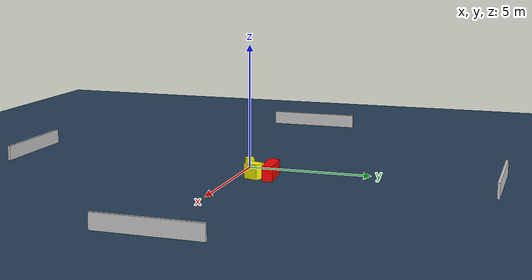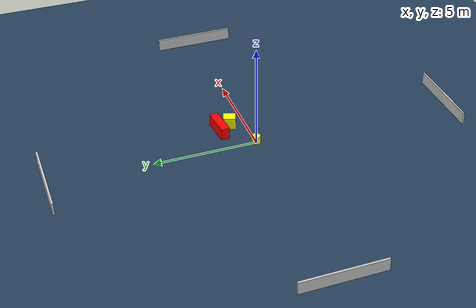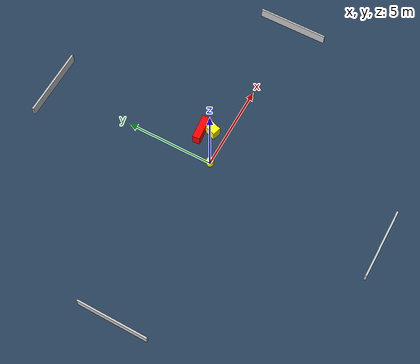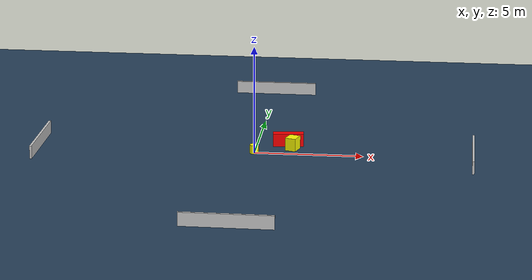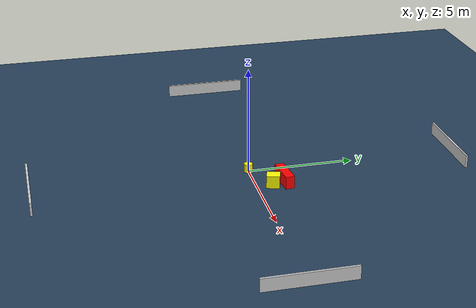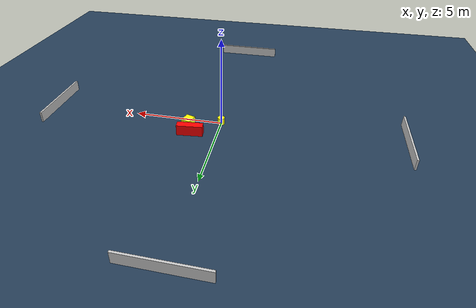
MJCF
<?xml version="1.0" ?>
<mujoco model="generated_environment">
  <option timestep="0.01" integrator="RK4" cone="elliptic"/>
  <default>
    <geom density="1"/>
  </default>
  <asset>
    <texture builtin="gradient" height="3072" name="skybox" rgb1="0.3 0.5 0.7" rgb2="0 0 0" type="skybox" width="512"/>
    <texture builtin="checker" height="300" name="groundplane" rgb1="0.2 0.3 0.4" rgb2="0.1 0.2 0.3" type="2d" width="300"/>
    <material name="groundplane" reflectance="0.2" texrepeat="5 5" texture="groundplane"/>
  </asset>
  <worldbody>
    <light dir="0 0 -1" directional="true" pos="0 0 1.5"/>
    <geom condim="3" friction="0.5 0.005 0.001" material="groundplane" name="floor" pos="0 0 0" size="0 0 0.05" type="plane"/>
    <body name="walls">
      <geom name="wall_1" condim="4" pos="-10.0 0.0 0.3" rgba="0.800000011920929 0.800000011920929 0.800000011920929 1.0" size="0.05 2.0 0.3" type="box"/>
      <geom name="wall_2" condim="4" pos="10.0 0.0 0.3" rgba="0.800000011920929 0.800000011920929 0.800000011920929 1.0" size="0.05 2.0 0.3" type="box"/>
      <geom name="wall_3" condim="4" pos="0.0 -10.0 0.3" rgba="0.800000011920929 0.800000011920929 0.800000011920929 1.0" size="2.0 0.05 0.3" type="box"/>
      <geom name="wall_4" condim="4" pos="0.0 10.0 0.3" rgba="0.800000011920929 0.800000011920929 0.800000011920929 1.0" size="2.0 0.05 0.3" type="box"/>
    </body>
    <body name="robot">
      <joint name="joint_x" type="slide" pos="0 0 0" axis="1 0 0"/>
      <joint name="joint_y" type="slide" pos="0 0 0" axis="0 1 0"/>
      <geom name="robot" type="cylinder" pos="0.0 0.0 0.2" size="0.2 0.2 0.0" mass="5.0" friction="1.0 0.005 0.0001" condim="4" rgba="1.0 1.0 0.0 1.0"/>
    </body>
    <body name="obstacle_1_movable">
      <geom name="obstacle_1_movable" condim="4" pos="1.707098188634475 0.7515333809300769 0.3" euler="0 0 251.86751544215267" friction="0.0 0.005 0.001" rgba="1.0 1.0 0.0 1.0" size="0.3009158780724682 0.2538687457641256 0.3" type="box" mass="0.1"/>
      <joint type="free"/>
    </body>
    <body name="obstacle_2_static">
      <geom name="obstacle_2_static" condim="4" pos="1.4471971245561936 1.345502639568309 0.3" euler="0 0 185.775665562533" friction="0.0 0.005 0.001" rgba="1.0 0.0 0.0 1.0" size="0.7134269271575655 0.21036758412001855 0.3" type="box"/>
    </body>
  </worldbody>
  <actuator>
    <motor name="actuator_x" joint="joint_x" gear="1" ctrlrange="-1 1"/>
    <motor name="actuator_y" joint="joint_y" gear="1" ctrlrange="-1 1"/>
  </actuator>
</mujoco>
